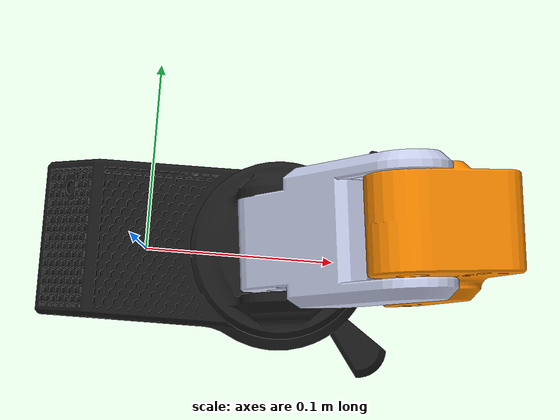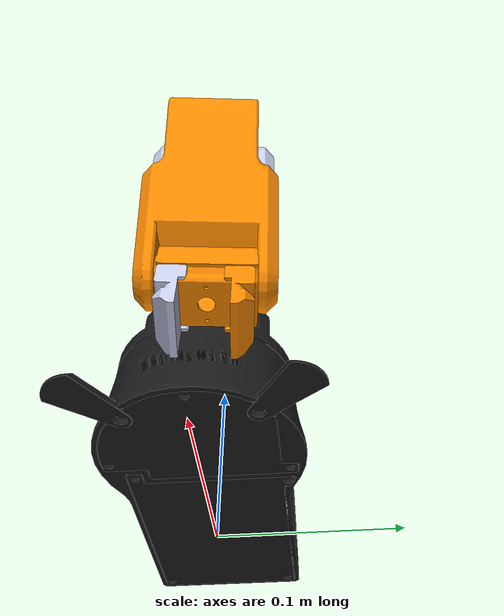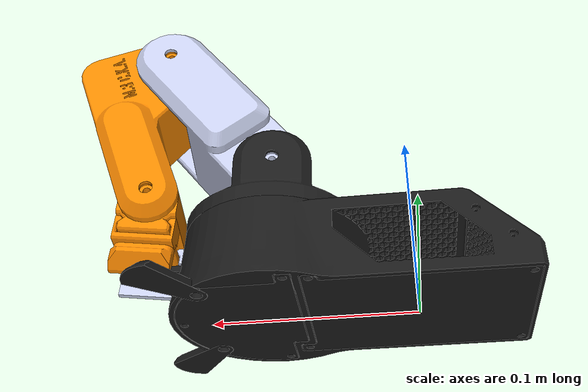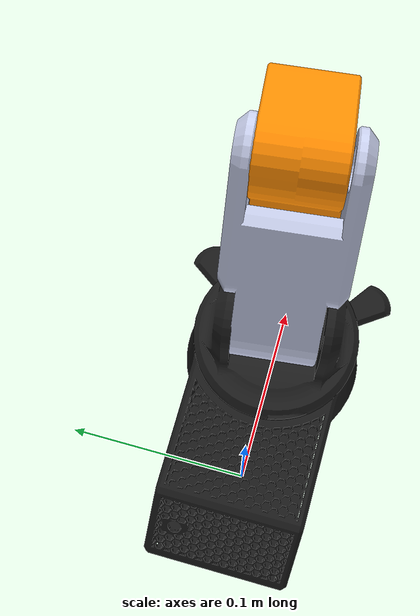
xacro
<?xml version="1.0" encoding="utf-8"?>
<robot
  name="roboflex_description">
   <link name="world"/>
  <joint name="world_fixed" type="fixed">
    <parent link="world"/>
    <child link="base_link"/>
  </joint>
    <link name="random"/>
  <joint name="gripper_right_arm_joint_mimic" type="fixed">
    <parent link="world" />
    <child link="random" />
  </joint>
  <link
    name="base_link">
    <inertial>
      <origin
        xyz="0.0510833714941891 -0.000382491207532185 0.0217127988867176"
        rpy="0 0 0" />
      <mass
        value="0.134010546349551" />
      <inertia
        ixx="0.000135168968386867"
        ixy="-6.91009818544603E-06"
        ixz="-4.27277612477508E-07"
        iyy="0.000264392316906781"
        iyz="2.33805747583068E-06"
        izz="0.000360228823068858" />
    </inertial>
    <visual>
      <origin
        xyz="0 0 0"
        rpy="0 0 0" />
      <geometry>
        <mesh
          filename="package://sample_description/meshes/arm/base_link.STL" />
      </geometry>
      <material
        name="">
        <color
          rgba="0.101960784313725 0.101960784313725 0.101960784313725 1" />
      </material>
    </visual>
    <collision>
      <origin
        xyz="0 0 0"
        rpy="0 0 0" />
      <geometry>
        <mesh
          filename="package://sample_description/meshes/arm/base_link.STL" />
      </geometry>
    </collision>
  </link>
  <link
    name="link_1">
    <inertial>
      <origin
        xyz="-0.000504987369576881 -0.00192015564628449 0.0125056781091124"
        rpy="0 0 0" />
      <mass
        value="0.0638354222165659" />
      <inertia
        ixx="2.03092324202962E-05"
        ixy="1.97476549743696E-08"
        ixz="-7.97162472228022E-08"
        iyy="3.76044775767883E-05"
        iyz="7.57521345651875E-08"
        izz="3.90116541064214E-05" />
    </inertial>
    <visual>
      <origin
        xyz="0 0 0"
        rpy="0 0 0" />
      <geometry>
        <mesh
          filename="package://sample_description/meshes/arm/link_1.STL" />
      </geometry>
      <material
        name="">
        <color
          rgba="0.109803921568627 0.109803921568627 0.109803921568627 1" />
      </material>
    </visual>
    <collision>
      <origin
        xyz="0 0 0"
        rpy="0 0 0" />
      <geometry>
        <mesh
          filename="package://sample_description/meshes/arm/link_1.STL" />
      </geometry>
    </collision>
  </link>
  <joint
    name="joint_1"
    type="revolute">
    <origin
      xyz="0.070969 0.0010304 0.043"
      rpy="0 0 0.1111" />
    <parent
      link="base_link" />
    <child
      link="link_1" />
    <axis
      xyz="0 0 1" />
    <limit
      lower="-1.57"
      upper="1.57"
      effort="100"
      velocity="10" />
  </joint>
  <link
    name="link_2">
    <inertial>
      <origin
        xyz="0.031343593606014 -0.033194511695909 0.0346893395786339"
        rpy="0 0 0" />
      <mass
        value="0.0748071563743272" />
      <inertia
        ixx="5.72586798767209E-05"
        ixy="-2.17172463324134E-06"
        ixz="-3.11579534120587E-05"
        iyy="8.85941858983056E-05"
        iyz="-1.82503441571111E-06"
        izz="4.23555093688654E-05" />
    </inertial>
    <visual>
      <origin
        xyz="0 0 0"
        rpy="0 0 0" />
      <geometry>
        <mesh
          filename="package://sample_description/meshes/arm/link_2.STL" />
      </geometry>
      <material
        name="">
        <color
          rgba="0.792156862745098 0.819607843137255 0.933333333333333 1" />
      </material>
    </visual>
    <collision>
      <origin
        xyz="0 0 0"
        rpy="0 0 0" />
      <geometry>
        <mesh
          filename="package://sample_description/meshes/arm/link_2.STL" />
      </geometry>
    </collision>
  </link>
  <joint
    name="joint_2"
    type="revolute">
    <origin
      xyz="0 0.0325 0.0325"
      rpy="0 0 -0.1111" />
    <parent
      link="link_1" />
    <child
      link="link_2" />
    <axis
      xyz="0 1 0" />
    <limit
      lower="-1.57"
      upper="1.57"
      effort="100"
      velocity="10" />
  </joint>
  <link
    name="link_3">
    <inertial>
      <origin
        xyz="0.0197629660433578 -0.030027785532378 -0.0317187827668957"
        rpy="0 0 0" />
      <mass
        value="0.0681820843287335" />
      <inertia
        ixx="6.62088304393394E-05"
        ixy="-1.58912620866844E-06"
        ixz="-9.02679832507164E-07"
        iyy="8.33946612488642E-05"
        iyz="9.8047855071422E-07"
        izz="2.58153176561903E-05" />
    </inertial>
    <visual>
      <origin
        xyz="0 0 0"
        rpy="0 0 0" />
      <geometry>
        <mesh
          filename="package://sample_description/meshes/arm/link_3.STL" />
      </geometry>
      <material
        name="">
        <color
          rgba="1 0.549019607843137 0 1" />
      </material>
    </visual>
    <collision>
      <origin
        xyz="0 0 0"
        rpy="0 0 0" />
      <geometry>
        <mesh
          filename="package://sample_description/meshes/arm/link_3.STL" />
      </geometry>
    </collision>
  </link>
  <joint
    name="joint_3"
    type="revolute">
    <origin
      xyz="0.055963 0.0072494 0.070118"
      rpy="0 0 0" />
    <parent
      link="link_2" />
    <child
      link="link_3" />
    <axis
      xyz="0 1 0" />
    <limit
      lower="-1.57"
      upper="1.57"
      effort="100"
      velocity="10" />
  </joint>
  <link
    name="gripper_body">
    <inertial>
      <origin
        xyz="0.00366792697051652 -0.0305352088790062 -0.00315927269818361"
        rpy="0 0 0" />
      <mass
        value="0.0278753951925544" />
      <inertia
        ixx="8.84531615559998E-06"
        ixy="5.0578418536861E-07"
        ixz="-8.00380587396263E-08"
        iyy="4.01315758864673E-06"
        iyz="4.69313260641993E-07"
        izz="9.22963344114184E-06" />
    </inertial>
    <visual>
      <origin
        xyz="0 0 0"
        rpy="0 0 0" />
      <geometry>
        <mesh
          filename="package://sample_description/meshes/arm/gripper_body.STL" />
      </geometry>
      <material
        name="">
        <color
          rgba="1 0.549019607843137 0 1" />
      </material>
    </visual>
    <collision>
      <origin
        xyz="0 0 0"
        rpy="0 0 0" />
      <geometry>
        <mesh
          filename="package://sample_description/meshes/arm/gripper_body.STL" />
      </geometry>
    </collision>
  </link>
  <joint
    name="joint_gripper_body"
    type="revolute">
    <origin
      xyz="0.0047405 0.001535 -0.089868"
      rpy="0 0 0" />
    <parent
      link="link_3" />
    <child
      link="gripper_body" />
    <axis
      xyz="0.11087 -0.99383 0" />
    <limit
      lower="-1.57"
      upper="1.57"
      effort="100"
      velocity="10" />
  </joint>
  <link
    name="gripper_right_link">
    <inertial>
      <origin
        xyz="0.00711515579656138 -0.0468297685812532 -0.0258977245580506"
        rpy="0 0 0" />
      <mass
        value="0.00458915923311391" />
      <inertia
        ixx="2.36373443416885E-07"
        ixy="-4.01717813265858E-08"
        ixz="-1.70221000472395E-08"
        iyy="5.87615385191018E-07"
        iyz="3.99508874235914E-09"
        izz="4.30778221373743E-07" />
    </inertial>
    <visual>
      <origin
        xyz="0 0 0"
        rpy="0 0 0" />
      <geometry>
        <mesh
          filename="package://sample_description/meshes/arm/gripper_right_link.STL" />
      </geometry>
      <material
        name="">
        <color
          rgba="0.796078431372549 0.823529411764706 0.937254901960784 1" />
      </material>
    </visual>
    <collision>
      <origin
        xyz="0 0 0"
        rpy="0 0 0" />
      <geometry>
        <mesh
          filename="package://sample_description/meshes/arm/gripper_right_link.STL" />
      </geometry>
    </collision>
  </link>
  <joint
    name="joint_gripper_right_link"
    type="prismatic">
    <mimic joint="joint_gripper_left_link"/>
    <origin
      xyz="0 0 0"
      rpy="0 0 0" />
    <parent
      link="gripper_body" />
    <child
      link="gripper_right_link" />
    <axis
      xyz="0.11087 -0.99383 0" />
    <limit
      lower="0"
      upper="1.57"
      effort="100"
      velocity="10" />
  </joint>
  <link
    name="gripper_left_link">
    <inertial>
      <origin
        xyz="0.00369787838316388 -0.0161978471370787 -0.025897424255565"
        rpy="0 0 0" />
      <mass
        value="0.00458928127195508" />
      <inertia
        ixx="2.36180755715519E-07"
        ixy="-3.9233358211967E-08"
        ixz="-1.57229351675509E-08"
        iyy="5.87866257941228E-07"
        iyz="-7.6558614680683E-09"
        izz="4.30804969344897E-07" />
    </inertial>
    <visual>
      <origin
        xyz="0 0 0"
        rpy="0 0 0" />
      <geometry>
        <mesh
          filename="package://sample_description/meshes/arm/gripper_left_link.STL" />
      </geometry>
      <material
        name="">
        <color
          rgba="1 0.545098039215686 0 1" />
      </material>
    </visual>
    <collision>
      <origin
        xyz="0 0 0"
        rpy="0 0 0" />
      <geometry>
        <mesh
          filename="package://sample_description/meshes/arm/gripper_left_link.STL" />
      </geometry>
    </collision>
  </link>
  <joint
    name="joint_gripper_left_link"
    type="prismatic">
    <origin
      xyz="0 0 0"
      rpy="0 0 0" />
    <parent
      link="gripper_body" />
    <child
      link="gripper_left_link" />
    <axis
      xyz="0.11087 -0.99383 0" />
    <limit
      lower="0"
      upper="1.57"
      effort="100"
      velocity="10" />
  </joint>

  <ros2_control name="GazeboSimSystem" type="system">
        <hardware>
          <plugin>gz_ros2_control/GazeboSimSystem</plugin>
        </hardware>

        <joint name="joint_1">
            <command_interface name="position">
                <param name="min">0</param>
                <param name="max">3.14</param>
            </command_interface>
            <state_interface name="position">
                <param name="initial_value">0.0</param>
            </state_interface>

        </joint>

        <joint name="joint_2">
            <command_interface name="position">
                <param name="min">-2.879793</param>
                <param name="max">2.879793</param>
            </command_interface>
            <state_interface name="position">
                <param name="initial_value">0.0</param>
            </state_interface>
        </joint>

        <joint name="joint_3">
            <command_interface name="position">
                <param name="min">-2.879793</param>
                <param name="max">2.879793</param>
            </command_interface>
            <state_interface name="position">
                <param name="initial_value">0.0</param>
            </state_interface>
        </joint>

        <joint name="joint_gripper_body">
            <command_interface name="position">
                <param name="min">-1.57</param>
                <param name="max">1.57</param>
            </command_interface>
            <state_interface name="position">
                <param name="initial_value">0.0</param>
            </state_interface>
        </joint>

        <joint name="joint_gripper_left_link">
            <command_interface name="position">
                <param name="min">0</param>
                <param name="max">1.57</param>
            </command_interface>
            <state_interface name="position">
                <param name="initial_value">0.0</param>
            </state_interface>
            <state_interface name="velocity"/>
        </joint>

    </ros2_control>

  <gazebo>
    <!-- Joint state publisher -->
    <plugin filename="gz_ros2_control-system" name="gz_ros2_control::GazeboSimROS2ControlPlugin">
      <parameters>$(find sample_description)/config/sample_robot_controllers.yaml</parameters>
    </plugin>
  </gazebo>

</robot>
